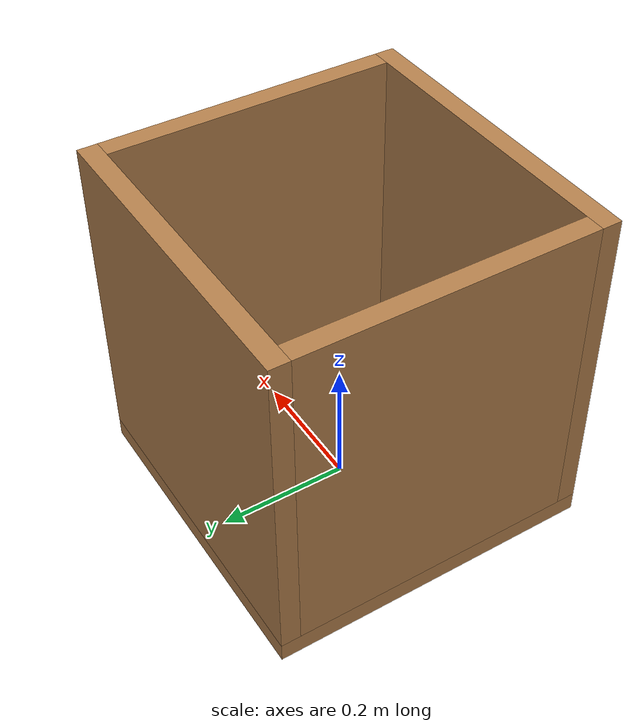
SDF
<?xml version="1.0" ?>
<sdf version="1.4">
  <model name="wooden_box">
    <static>true</static>
    <link name="link">
      <inertial>
        <mass>1.0</mass>
        <inertia>
          <ixx>0.083</ixx>
          <ixy>0.0</ixy>
          <ixz>0.0</ixz>
          <iyy>0.083</iyy>
          <iyz>0.0</iyz>
          <izz>0.083</izz>
        </inertia>
      </inertial>
      <collision name="base">
        <pose>0 0 0.015 0 0 0</pose>
        <geometry>
          <box>
            <size>0.5 0.5 0.03</size>
          </box>
        </geometry>
        <surface>
          <friction>
            <ode>
              <mu>0.6</mu>
              <mu2>0.6</mu2>
            </ode>
          </friction>
        </surface>
      </collision>
      <visual name="base">
        <pose>0 0 0.015 0 0 0</pose>
        <geometry>
          <box>
            <size>0.5 0.5 0.03</size>
          </box>
        </geometry>
        <material>
          <script>
            <uri>file://media/materials/scripts/gazebo.material</uri>
            <name>Gazebo/Wood</name>
          </script>
        </material>
      </visual>
      <collision name="front_side">
        <pose>0.235 0.0 0.28 0 0 0</pose>
        <geometry>
          <box>
            <size>0.03 0.44 0.5</size>
          </box>
        </geometry>
        <surface>
          <friction>
            <ode>
              <mu>0.6</mu>
              <mu2>0.6</mu2>
            </ode>
          </friction>
        </surface>
      </collision>
      <visual name="front_side">
        <pose>0.235 0.0 0.28 0 0 0</pose>
        <geometry>
          <box>
            <size>0.03 0.44 0.5</size>
          </box>
        </geometry>
        <material>
          <script>
            <uri>file://media/materials/scripts/gazebo.material</uri>
            <name>Gazebo/Wood</name>
          </script>
        </material>
      </visual>
      <collision name="back_side">
        <pose>-0.235 0.0 0.28 0 0 0</pose>
        <geometry>
          <box>
            <size>0.03 0.44 0.5</size>
          </box>
        </geometry>
        <surface>
          <friction>
            <ode>
              <mu>0.6</mu>
              <mu2>0.6</mu2>
            </ode>
          </friction>
        </surface>
      </collision>
      <visual name="back_side">
        <pose>-0.235 0.0 0.28 0 0 0</pose>
        <geometry>
          <box>
            <size>0.03 0.44 0.5</size>
          </box>
        </geometry>
        <material>
          <script>
            <uri>file://media/materials/scripts/gazebo.material</uri>
            <name>Gazebo/Wood</name>
          </script>
        </material>
      </visual>
      <collision name="right_side">
        <pose>0.0 0.235 0.28 0 0 0</pose>
        <geometry>
          <box>
            <size>0.5 0.03 0.5</size>
          </box>
        </geometry>
        <surface>
          <friction>
            <ode>
              <mu>0.6</mu>
              <mu2>0.6</mu2>
            </ode>
          </friction>
        </surface>
      </collision>
      <visual name="right_side">
        <pose>0.0 0.235 0.28 0 0 0</pose>
        <geometry>
          <box>
            <size>0.5 0.03 0.5</size>
          </box>
        </geometry>
        <material>
          <script>
            <uri>file://media/materials/scripts/gazebo.material</uri>
            <name>Gazebo/Wood</name>
          </script>
        </material>
      </visual>
      <collision name="left_side">
        <pose>0.0 -0.235 0.28 0 0 0</pose>
        <geometry>
          <box>
            <size>0.5 0.03 0.5</size>
          </box>
        </geometry>
        <surface>
          <friction>
            <ode>
              <mu>0.6</mu>
              <mu2>0.6</mu2>
            </ode>
          </friction>
        </surface>
      </collision>
      <visual name="left_side">
        <pose>0.0 -0.235 0.28 0 0 0</pose>
        <geometry>
          <box>
            <size>0.5 0.03 0.5</size>
          </box>
        </geometry>
        <material>
          <script>
            <uri>file://media/materials/scripts/gazebo.material</uri>
            <name>Gazebo/Wood</name>
          </script>
        </material>
      </visual>
    </link>
  </model>
</sdf>
